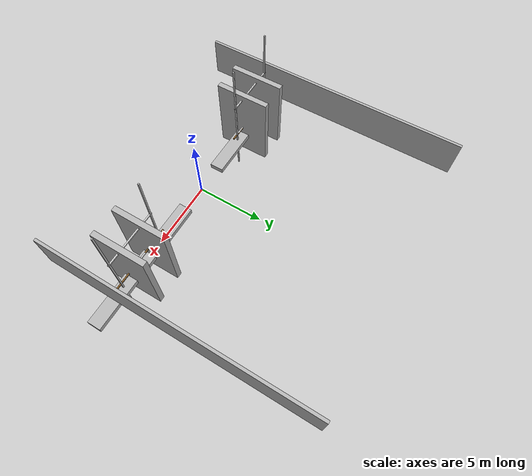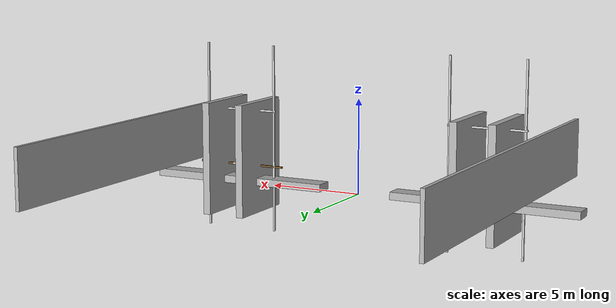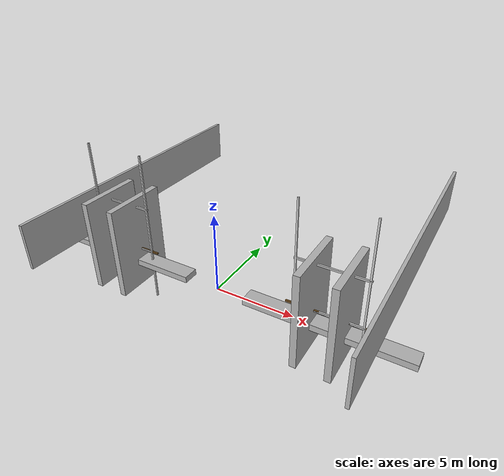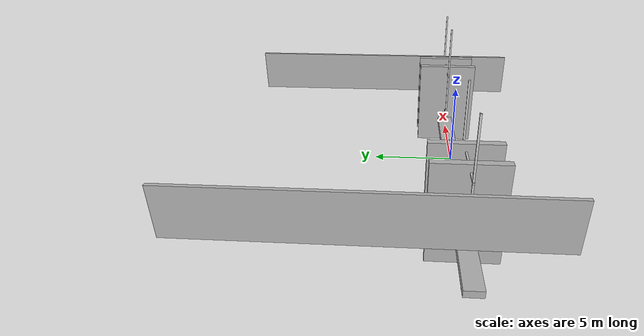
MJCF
<mujoco model="construction_scene">
  <asset>
    <!-- Textures for construction materials -->
    <texture name="concrete_texture" type="2d" builtin="flat" rgb1="0.7 0.7 0.7" width="100" height="100"/>
    <material name="concrete_material" texture="concrete_texture" reflectance="0.2"/>
    <texture name="wood_texture" type="2d" builtin="flat" rgb1="0.5 0.35 0.15" width="100" height="100"/>
    <material name="wood_material" texture="wood_texture" reflectance="0.2"/>
    <texture name="metal_texture" type="2d" builtin="flat" rgb1="0.8 0.8 0.8" width="100" height="100"/>
    <material name="metal_material" texture="metal_texture" reflectance="0.2"/>
  </asset>

  <worldbody>
    <!-- Large Vertical Wall at the Back (60 feet long) -->
    <body name="back_wall" pos="10 5 0">  <!-- 30 feet behind the robot -->
      <geom name="back_wall_geom" type="box" size="0.1 10 1.5" pos="0 0 2.5" material="concrete_material"/>
    </body>

        <!-- Large Vertical Wall at the Back (60 feet long) -->
    <body name="left_wall" pos="-10 5 0">  <!-- 30 feet behind the robot -->
      <geom name="left_wall_geom" type="box" size="0.1 10 1.5" pos="0 0 2.5" material="concrete_material"/>
    </body>

    <!-- Left Side: Semi-constructed building (vertical path) -->
    <body name="left_building" pos="-7 0 0">  <!-- 10 feet to the left of the robot -->
      <!-- Foundation -->
      <geom name="left_foundation" type="box" size="5 0.5 0.2" pos="0 0 0.2" material="concrete_material"/>

      <!-- Scaffolding -->
      <body name="left_scaffolding" pos="0 0 0">
        <!-- Vertical beams -->
        <geom name="left_scaffold_beam_1" type="box" size="0.05 0.05 5" pos="-2 0 2.5" material="metal_material"/>
        <geom name="left_scaffold_beam_2" type="box" size="0.05 0.05 5" pos="2 0 2.5" material="metal_material"/>

        <!-- Horizontal beams -->
        <geom name="left_scaffold_beam_3" type="box" size="2.1 0.05 0.05" pos="0 0 1" material="metal_material"/>
        <geom name="left_scaffold_beam_4" type="box" size="2.1 0.05 0.05" pos="0 0 4" material="metal_material"/>
      </body>

      <!-- Half-constructed walls -->
      <geom name="left_wall_1" type="box" size="0.2 2 3" pos="-1 0 1.5" material="concrete_material"/>
      <geom name="left_wall_2" type="box" size="0.2 2 3" pos="1 0 1.5" material="concrete_material"/>

      <!-- Construction materials (wooden planks) -->
      <body name="left_planks" pos="0 0 0.5">
        <geom name="left_plank_1" type="box" size="1 0.05 0.05" pos="-1.5 0 0.5" material="wood_material"/>
        <geom name="left_plank_2" type="box" size="1 0.05 0.05" pos="1.5 0 0.5" material="wood_material"/>
      </body>
    </body>

    <!-- Right Side: Replicate the left side with a 20-foot gap (vertical path) -->

    <body name="right_building" pos="7 0 0">  <!-- 10 feet to the right of the robot -->
      <!-- Foundation -->
      <geom name="right_foundation" type="box" size="5 0.5 0.2" pos="0 0 0.2" material="concrete_material"/>

      <!-- Scaffolding -->
      <body name="right_scaffolding" pos="0 0 0">
        <!-- Vertical beams -->
        <geom name="right_scaffold_beam_1" type="box" size="0.05 0.05 5" pos="-2 0 2.5" material="metal_material"/>
        <geom name="right_scaffold_beam_2" type="box" size="0.05 0.05 5" pos="2 0 2.5" material="metal_material"/>

        <!-- Horizontal beams -->
        <geom name="right_scaffold_beam_3" type="box" size="2.1 0.05 0.05" pos="0 0 1" material="metal_material"/>
        <geom name="right_scaffold_beam_4" type="box" size="2.1 0.05 0.05" pos="0 0 4" material="metal_material"/>
      </body>

      <!-- Half-constructed walls -->
      <geom name="right_wall_1" type="box" size="0.2 2 3" pos="-1 0 1.5" material="concrete_material"/>
      <geom name="right_wall_2" type="box" size="0.2 2 3" pos="1 0 1.5" material="concrete_material"/>

      <!-- Construction materials (wooden planks) -->
      <body name="right_planks" pos="0 0 0.5">
        <geom name="right_plank_1" type="box" size="1 0.05 0.05" pos="-1.5 0 0.5" material="wood_material"/>
        <geom name="right_plank_2" type="box" size="1 0.05 0.05" pos="1.5 0 0.5" material="wood_material"/>
      </body>
    </body>
  </worldbody>
</mujoco>
